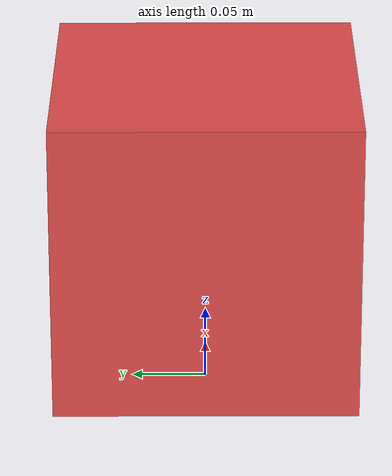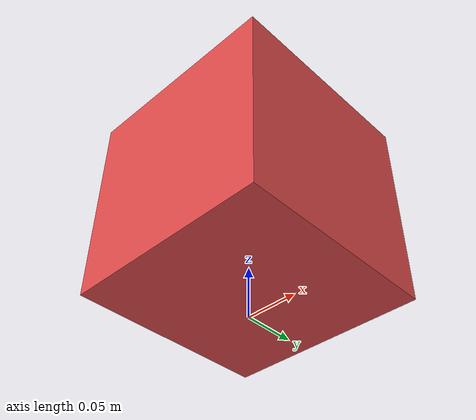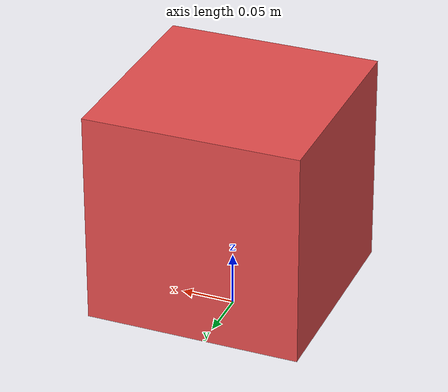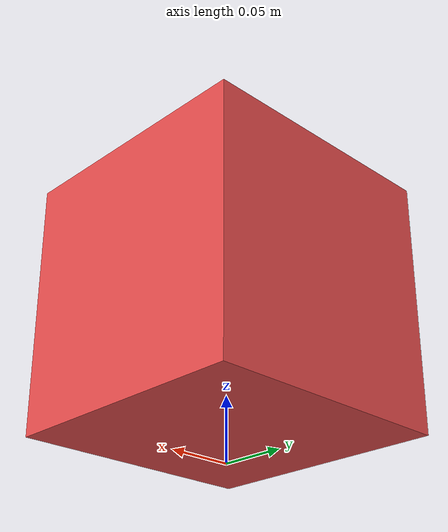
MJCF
<mujoco model="slider_robot">
    <actuator>
        <!-- Actuate each slider joint -->
        <motor name="slide_x_motor" joint="slider_x" ctrllimited="true" gear="50" ctrlrange="-1 1" />
        <motor name="slide_y_motor" joint="slider_y" ctrllimited="true" gear="50" ctrlrange="-1 1" />

        <motor name="hinge_z_motor" joint="hinge_z" ctrlrange="-1 1" gear="10" ctrllimited="true"/>
    </actuator>
    <worldbody>

        <body name="cube" pos="0 0 0.12">
            <!-- Geom for the visible part -->
            <geom type="box" size="0.1 0.1 0.1" rgba="0.9 0.3 0.3 1" mass="0.1" group="0"/>
            <geom type="box" size="0.1 0.1 0.1" rgba="0.9 0.3 0.3 1" group="1"/>

            <!-- Define slider joints for movement along the x and y-axes -->
            <joint name="slider_x" type="slide" axis="1 0 0" damping="0.1"/>
            <joint name="slider_y" type="slide" axis="0 1 0" damping="0.1"/>
            <joint name="hinge_z" type="hinge" axis="0 0 1" damping="0.2"/>
        </body>
    </worldbody>

</mujoco>
